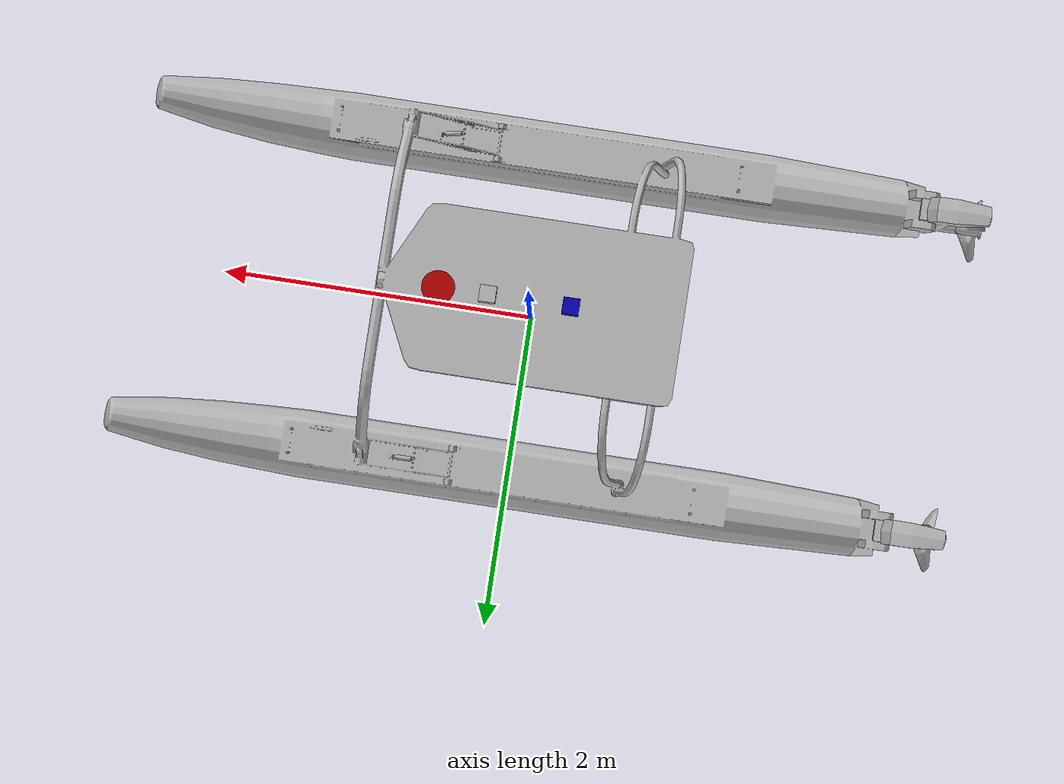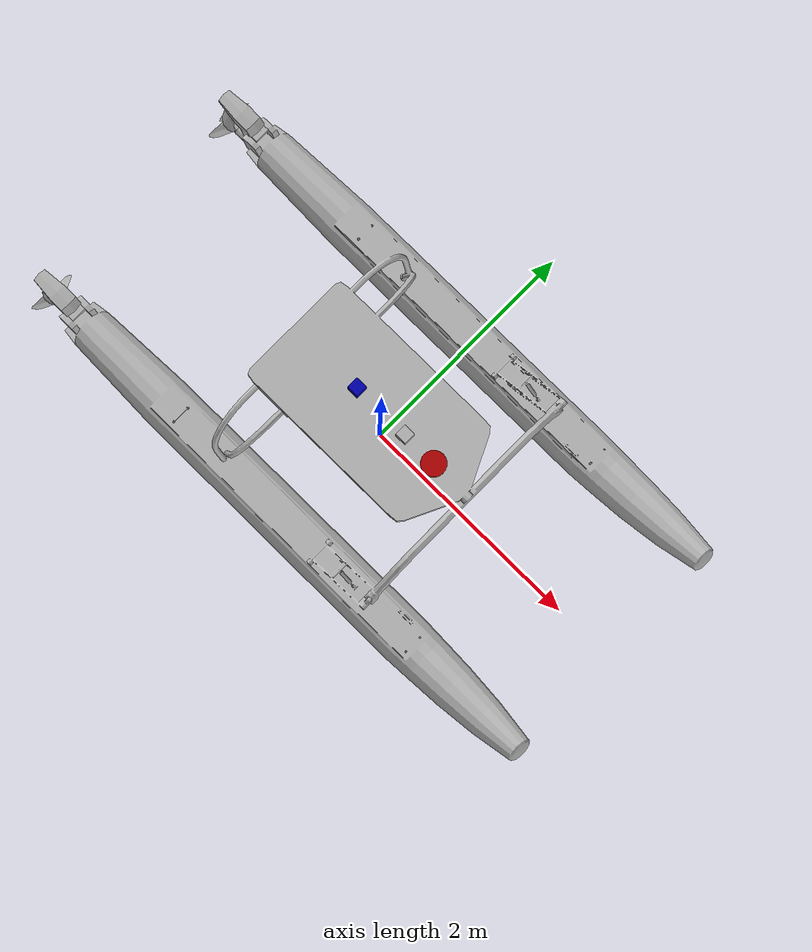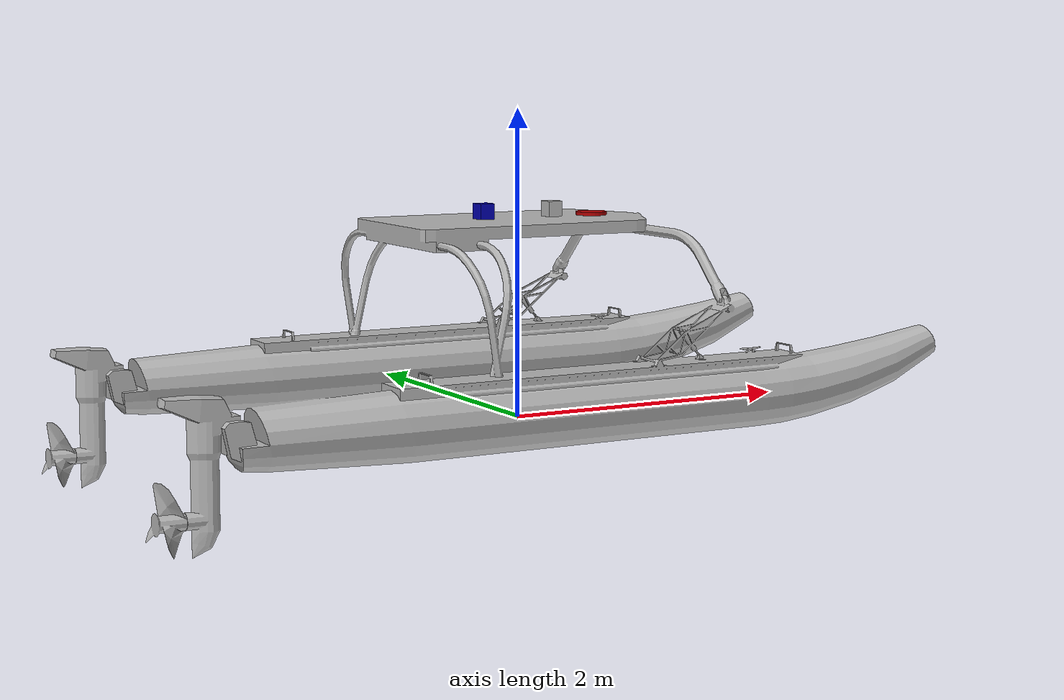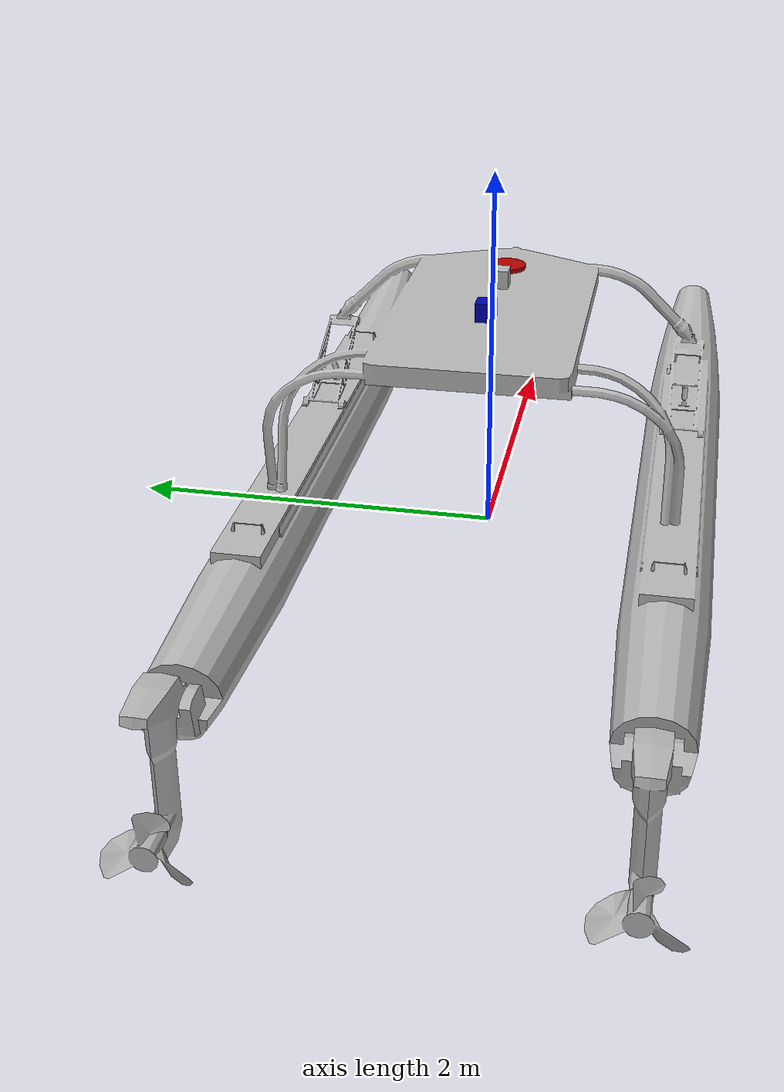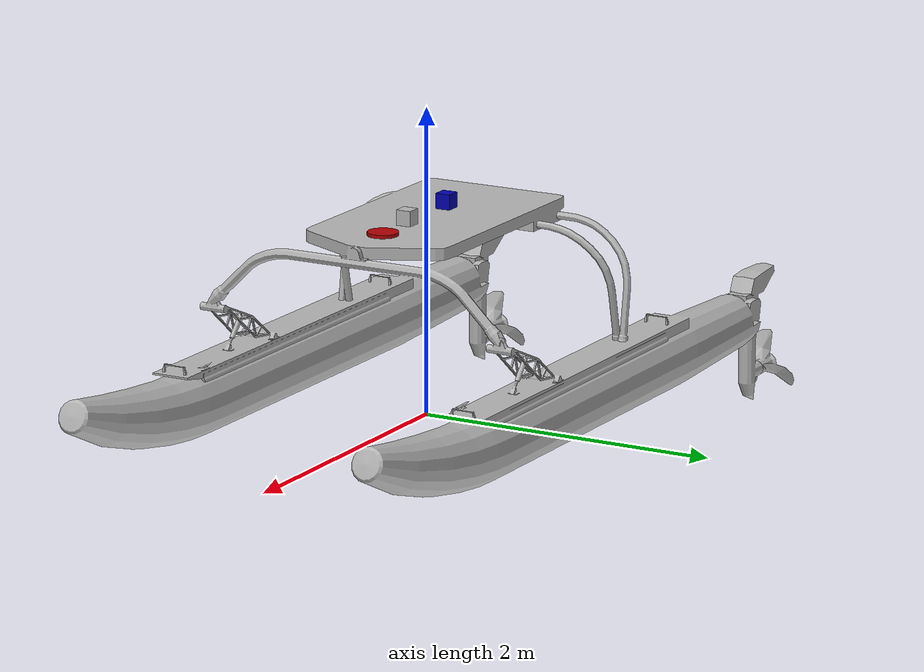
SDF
<?xml version='1.0'?>
<sdf version='1.7'>
  <model name='wam-v'>
    <enable_wind>true</enable_wind>

    <link name="base_link">
      <visual name="visual">
        <geometry>
          <mesh>
            <uri>model://wam-v/meshes/WAM-V-Base.dae</uri>
          </mesh>
        </geometry>
      </visual>
      <collision name="collision">
        <geometry>
          <mesh>
            <uri>model://wam-v/meshes/wam-v-base_collision_406.stl</uri>
          </mesh>
        </geometry>
      </collision>
      <inertial>
        <pose>0 0 0 0 0 0</pose>
        <mass>180</mass>
        <inertia>
          <ixx>120</ixx>
          <ixy>0</ixy>
          <iyy>393</iyy>
          <iyz>0</iyz>
          <izz>446</izz>
        </inertia>
      </inertial>

      <sensor name="gpu_lidar" type="gpu_ray">
        <pose> 0 0 1.5 0 0 0 </pose>
        <topic>/lidar/wam_v</topic>
        <visualize>false</visualize>
        <update_rate>10</update_rate>
        <ray>
          <scan>
            <horizontal>
                <samples>360</samples>
                <min_angle>-3.14</min_angle>
                <max_angle>3.14</max_angle>
            </horizontal>
            <vertical>
                <samples>1</samples>
                <resolution>0.01</resolution>
                <min_angle>0</min_angle>
                <max_angle>0</max_angle>
            </vertical>
          </scan>
          <range>
              <min>0.3</min>
              <max>12</max>
          </range>
          <noise>
            <type>gaussian</type>
            <mean>0.0</mean>
            <stddev>0.01</stddev>
          </noise>
        </ray>
        <always_on>1</always_on>
      </sensor>
    </link>

    <link name="left_engine_link">
      <pose>-2.373776 1.027135 0.318237 0 0 0</pose>
      <visual name="visual">
        <geometry>
          <mesh>
            <uri>model://wam-v/meshes/engine.dae</uri>
          </mesh>
        </geometry>
      </visual>
      <collision name="engine_vertical_axis_collision">
        <pose>-0.16 0 -0.215 0 0 0</pose>
        <geometry>
          <box>
            <size>0.2 0.1 0.83</size>
          </box>
        </geometry>
      </collision>
      <collision name="engine_rear_end_collision">
        <pose>-0.34 0 0.12 0 0 0</pose>
        <geometry>
          <box>
            <size>0.12 0.15 0.12</size>
          </box>
        </geometry>
      </collision>
      <inertial>
        <mass>15</mass>
        <inertia>
          <ixx>0.88924</ixx>
          <ixy>0</ixy>
          <iyy>0.911125</iyy>
          <iyz>0</iyz>
          <izz>0.078125</izz>
        </inertia>
      </inertial>
    </link>
    <joint name="left_engine_joint" type="revolute">
      <parent>base_link</parent>
      <child>left_engine_link</child>
      <axis>
        <xyz>0 0 1</xyz>
        <limit>
          <lower>-1.570796</lower>
          <upper>1.570796</upper>
          <effort>20.0</effort>
        </limit>
        <dynamics>
          <damping>5</damping>
        </dynamics>
      </axis>
    </joint>

    <link name="right_engine_link">
      <pose>-2.373776 -1.027135 0.318237 0 0 0</pose>
      <visual name="visual">
        <geometry>
          <mesh>
            <uri>model://wam-v/meshes/engine.dae</uri>
          </mesh>
        </geometry>
      </visual>
      <collision name="engine_vertical_axis_collision">
        <pose>-0.16 0 -0.215 0 0 0</pose>
        <geometry>
          <box>
            <size>0.2 0.1 0.83</size>
          </box>
        </geometry>
      </collision>
      <collision name="engine_rear_end_collision">
        <pose>-0.34 0 0.12 0 0 0</pose>
        <geometry>
          <box>
            <size>0.12 0.15 0.12</size>
          </box>
        </geometry>
      </collision>
      <inertial>
        <mass>15</mass>
        <inertia>
          <ixx>0.88924</ixx>
          <ixy>0</ixy>
          <iyy>0.911125</iyy>
          <iyz>0</iyz>
          <izz>0.078125</izz>
        </inertia>
      </inertial>
    </link>
    <joint name="right_engine_joint" type="revolute">
      <parent>base_link</parent>
      <child>right_engine_link</child>
      <axis>
        <xyz>0 0 1</xyz>
        <limit>
          <lower>-1.570796</lower>
          <upper>1.570796</upper>
          <effort>20.0</effort>
        </limit>
        <dynamics>
          <damping>5</damping>
        </dynamics>
      </axis>
    </joint>

    <link name="left_propeller_link">
      <pose relative_to="left_propeller_joint">0 0 0 0 0 0</pose>
      <visual name="visual">
        <geometry>
          <mesh>
            <uri>model://wam-v/meshes/propeller.dae</uri>
          </mesh>
        </geometry>
      </visual>
      <collision name="collision">
        <pose>-0.11 0 0 0 1.570796 0</pose>
        <geometry>
          <cylinder>
            <length>0.08</length>
            <radius>0.24</radius>
          </cylinder>
        </geometry>
      </collision>
      <inertial>
        <mass>0.5</mass>
        <inertia>
          <ixx>0.008545</ixx>
          <ixy>0</ixy>
          <iyy>0.008545</iyy>
          <iyz>0</iyz>
          <izz>0.0144</izz>
        </inertia>
      </inertial>
    </link>
    <joint name="left_propeller_joint" type="revolute">
      <pose relative_to="left_engine_link">-0.278156 0 -0.509371 0 0 0</pose>
      <parent>left_engine_link</parent>
      <child>left_propeller_link</child>
      <axis>
        <xyz>1 0 0</xyz>
        <dynamics>
          <damping>0.01</damping>
        </dynamics>
        <limit>
          <lower>-1e+16</lower>
          <upper>1e+16</upper>
        </limit>
      </axis>
    </joint>

    <link name="right_propeller_link">
      <pose relative_to="right_propeller_joint">0 0 0 0 0 0</pose>
      <visual name="visual">
        <geometry>
          <mesh>
            <uri>model://wam-v/meshes/propeller.dae</uri>
          </mesh>
        </geometry>
      </visual>
      <collision name="collision">
        <pose>-0.11 0 0 0 1.570796 0</pose>
        <geometry>
          <cylinder>
            <length>0.08</length>
            <radius>0.24</radius>
          </cylinder>
        </geometry>
      </collision>
      <inertial>
        <mass>0.5</mass>
        <inertia>
          <ixx>0.008545</ixx>
          <ixy>0</ixy>
          <iyy>0.008545</iyy>
          <iyz>0</iyz>
          <izz>0.0144</izz>
        </inertia>
      </inertial>
    </link>
    <joint name="right_propeller_joint" type="revolute">
      <pose relative_to="right_engine_link">-0.278156 0 -0.509371 0 0 0</pose>
      <parent>right_engine_link</parent>
      <child>right_propeller_link</child>
      <axis>
        <xyz>1 0 0</xyz>
        <dynamics>
          <damping>0.01</damping>
        </dynamics>
        <limit>
          <lower>-1e+16</lower>
          <upper>1e+16</upper>
        </limit>
      </axis>
    </joint>

    <link name="lidar">
      <visual name="visual">
        <pose>0.55 0 1.30 0 0 0</pose>
        <geometry>
              <cylinder>
                <radius>0.1</radius>
                <length>0.04</length>
              </cylinder>
        </geometry>
        <material>
          <!-- Red material -->
          <ambient>0.5 0 0 1</ambient>
          <diffuse>0.7 0 0 1</diffuse>
          <specular>0 0 0 0</specular>
          <emissive>0.5 0 0 1</emissive>
        </material>

      </visual>
      <collision name="lidar">
        <geometry>
          <cylinder>
            <radius>0.05</radius>
            <length>0.04</length>
          </cylinder>
        </geometry>
      </collision>
      <inertial>
        <pose>0 0 0 0 0 0</pose>
        <mass>0.1</mass>
        <inertia>
          <ixx>0.00001</ixx>
          <ixy>0</ixy>
          <ixz>0</ixz>
          <iyy>0.00002</iyy>
          <iyz>0</iyz>
          <izz>0.00002</izz>
        </inertia>
      </inertial>

    </link>

    <joint name="lidar_joint" type="fixed">
      <parent>base_link</parent>
      <child>lidar</child>
      <origin xyz="0 0 0" rpy="0 0 0"/>
    </joint>

    <!-- Sensors -->
    <link name="imu_link">
      <inertial>
        <pose>0 0 0 0 0 0</pose>
        <mass>0.15</mass>
        <inertia>
          <ixx>0.00001</ixx>
          <ixy>0</ixy>
          <ixz>0</ixz>
          <iyy>0.00002</iyy>
          <iyz>0</iyz>
          <izz>0.00002</izz>
        </inertia>
      </inertial>
      <sensor name="imu_sensor" type="imu">
        <pose>0 0 0 3.141593 0 0</pose>
        <always_on>1</always_on>
        <update_rate>1000.0</update_rate>
        <topic>/wamv/sensor/imu</topic>
      </sensor>
    </link>
    <joint name="imu_joint" type="revolute">
      <child>imu_link</child>
      <parent>base_link</parent>
      <axis>
        <xyz>0 0 1</xyz>
        <limit>
          <lower>0</lower>
          <upper>0</upper>
          <effort>0</effort>
          <velocity>0</velocity>
        </limit>
        <dynamics>
          <damping>1.0</damping>
        </dynamics>
      </axis>
    </joint>

    <link name="gps_link">
      <inertial>
        <mass>0.1</mass>
        <inertia>
          <ixx>0.000166667</ixx>
          <iyy>0.000166667</iyy>
          <izz>0.000166667</izz>
        </inertia>
      </inertial>
      <collision name="collision">
        <geometry>
          <box>
            <size>0.1 0.1 0.1</size>
          </box>
        </geometry>
      </collision>
      <visual name="visual">
        <pose>0.25 0 1.35 0 0 0</pose>
        <geometry>
          <box>
            <size>0.1 0.1 0.1</size>
          </box>
        </geometry>
      </visual>

      <sensor name="navsat" type="navsat">
        <always_on>1</always_on>
        <update_rate>1000</update_rate>
        <topic>/wamv/sensor/gps</topic>
      </sensor>
    </link>
    <joint name="gps_joint" type="revolute">
      <child>gps_link</child>
      <parent>base_link</parent>
      <axis>
        <xyz>0 0 1</xyz>
        <limit>
          <lower>0</lower>
          <upper>0</upper>
          <effort>0</effort>
          <velocity>0</velocity>
        </limit>
        <dynamics>
          <damping>1.0</damping>
        </dynamics>
      </axis>
    </joint>

    <link name="magnetometer_link">
      <inertial>
        <mass>0.1</mass>
        <inertia>
          <ixx>0.000166667</ixx>
          <iyy>0.000166667</iyy>
          <izz>0.000166667</izz>
        </inertia>
      </inertial>
      <collision name="collision">
        <geometry>
          <box>
            <size>0.1 0.1 0.1</size>
          </box>
        </geometry>
      </collision>
      <visual name="visual">
        <pose>-0.25 0 1.35 0 0 0</pose>
        <geometry>
          <box>
            <size>0.1 0.1 0.1</size>
          </box>
        </geometry>
        <material name="blue">
          <!-- Blue material -->
          <ambient>0 0 0.5 1</ambient>
          <diffuse>0 0 0.7 1</diffuse>
          <specular>0 0 0 0</specular>
          <emissive>0 0 0.5 1</emissive>
        </material>

      </visual>

      <sensor name="magnetometer" type="magnetometer">
        <always_on>1</always_on>
        <update_rate>1000</update_rate>
        <topic>/wamv/sensor/magnetometer</topic>
      </sensor>
    </link>
    <joint name="magnetometer_joint" type="revolute">
      <child>magnetometer_link</child>
      <parent>base_link</parent>
      <axis>
        <xyz>0 0 1</xyz>
        <limit>
          <lower>0</lower>
          <upper>0</upper>
          <effort>0</effort>
          <velocity>0</velocity>
        </limit>
        <dynamics>
          <damping>1.0</damping>
        </dynamics>
      </axis>
    </joint>

    <!-- Joint state and force plugins -->
    <plugin filename="gz-sim-joint-state-publisher-system"
      name="gz::sim::systems::JointStatePublisher">
      <topic>/wamv/state/joint_states</topic>
    </plugin>

    <!-- Joint Position Controller plugin -->
    <plugin
      filename="gz-sim-joint-position-controller-system"
      name="gz::sim::systems::JointPositionController">
      <joint_name>right_engine_joint</joint_name>
      <use_velocity_commands>true</use_velocity_commands>
      <topic>/wamv/rudder/right/cmd</topic>
    </plugin>

    <plugin
      filename="gz-sim-joint-position-controller-system"
      name="gz::sim::systems::JointPositionController">
      <joint_name>left_engine_joint</joint_name>
      <use_velocity_commands>true</use_velocity_commands>
      <topic>/wamv/rudder/left/cmd</topic>
    </plugin>

    <!-- Thruster plugins -->
    <plugin
        filename="gz-sim-thruster-system"
        name="gz::sim::systems::Thruster">
      <namespace>wamv</namespace>
      <joint_name>left_propeller_joint</joint_name>
      <use_angvel_cmd>0</use_angvel_cmd>
      <fluid_density>1000</fluid_density>
      <propeller_diameter>0.48</propeller_diameter>
      <thrust_coefficient>0.01</thrust_coefficient>
      <velocity_control>1</velocity_control>
      <max_thrust_cmd>2000.0</max_thrust_cmd>
      <min_thrust_cmd>-2000.0</min_thrust_cmd>
      <cmd_topic>/wamv/thrust/left_propeller/cmd</cmd_topic>
    </plugin>
    <plugin
        filename="gz-sim-thruster-system"
        name="gz::sim::systems::Thruster">
      <namespace>wamv</namespace>
      <joint_name>right_propeller_joint</joint_name>
      <use_angvel_cmd>0</use_angvel_cmd>
      <fluid_density>1000</fluid_density>
      <propeller_diameter>0.48</propeller_diameter>
      <thrust_coefficient>0.01</thrust_coefficient>
      <velocity_control>1</velocity_control>
      <max_thrust_cmd>2000.0</max_thrust_cmd>
      <min_thrust_cmd>-2000.0</min_thrust_cmd>
      <cmd_topic>/wamv/thrust/right_propeller/cmd</cmd_topic>
    </plugin>

    <!-- Hydrodynamics plugin -->
    <plugin
        filename="gz-waves1-hydrodynamics-system"
        name="gz::sim::systems::Hydrodynamics">

        <enable>wam-v::base_link</enable>

        <hydrodynamics>
          <damping_on>1</damping_on>
          <viscous_drag_on>1</viscous_drag_on>
          <pressure_drag_on>1</pressure_drag_on>

          <!-- Linear and Angular Damping -->
          <cDampL1>1.0E-6</cDampL1>
          <cDampL2>1.0E-6</cDampL2>
          <cDampR1>1.0E-6</cDampR1>
          <cDampR2>1.0E-6</cDampR2>

          <!-- 'Pressure' Drag -->
          <cPDrag1>1.0E+2</cPDrag1>
          <cPDrag2>1.0E+2</cPDrag2>
          <fPDrag>0.4</fPDrag>
          <cSDrag1>1.0E+2</cSDrag1>
          <cSDrag2>1.0E+2</cSDrag2>
          <fSDrag>0.4</fSDrag>
          <vRDrag>1.0</vRDrag>
        </hydrodynamics>
    </plugin>

    <!-- ArduPilot plugin -->
    <plugin name="ArduPilotPlugin" filename="ArduPilotPlugin">
      <fdm_addr>127.0.0.1</fdm_addr>
      <fdm_port_in>9002</fdm_port_in>
      <connectionTimeoutMaxCount>5</connectionTimeoutMaxCount>
      <lock_step>1</lock_step>
      <modelXYZToAirplaneXForwardZDown>0 0 0 3.141593 0 0</modelXYZToAirplaneXForwardZDown>
      <gazeboXYZToNED>0 0 0 3.141593 0 1.57079632</gazeboXYZToNED>
      <imuName>imu_sensor</imuName>

      <!--
        SERVO1_FUNCTION 26 (GroundSteering)
      -->
      <control channel="0">
        <jointName>left_engine_joint</jointName>
        <useForce>1</useForce>
        <multiplier>3.1415926</multiplier>
        <offset>-0.5</offset>
        <servo_min>1000</servo_min>
        <servo_max>2000</servo_max>
        <type>POSITION</type>
        <p_gain>500.0</p_gain>
        <i_gain>0</i_gain>
        <d_gain>10</d_gain>
        <i_max>-1</i_max>
        <i_min>0</i_min>
        <cmd_max>5000.0</cmd_max>
        <cmd_min>-5000.0</cmd_min>
      </control>
      <control channel="0">
        <jointName>right_engine_joint</jointName>
        <useForce>1</useForce>
        <multiplier>3.1415926</multiplier>
        <offset>-0.5</offset>
        <servo_min>1000</servo_min>
        <servo_max>2000</servo_max>
        <type>POSITION</type>
        <p_gain>500.0</p_gain>
        <i_gain>0</i_gain>
        <d_gain>10</d_gain>
        <i_max>-1</i_max>
        <i_min>0</i_min>
        <cmd_max>5000.0</cmd_max>
        <cmd_min>-5000.0</cmd_min>
      </control>

        <!--
          SERVO3_FUNCTION 70 (Throttle)

          max thrust: +/- 1500 N (larger than VRX settings of +250 N / -100 N)

        -->
      <control channel="2">
        <jointName>left_propeller_joint</jointName>
        <useForce>1</useForce>
        <multiplier>3000</multiplier>
        <offset>-0.5</offset>
        <servo_min>1000</servo_min>
        <servo_max>2000</servo_max>
        <type>COMMAND</type>
        <cmd_topic>/wamv/thrust/left_propeller/cmd</cmd_topic>
      </control>
      <control channel="2">
        <jointName>right_propeller_joint</jointName>
        <useForce>1</useForce>
        <multiplier>3000</multiplier>
        <offset>-0.5</offset>
        <servo_min>1000</servo_min>
        <servo_max>2000</servo_max>
        <type>COMMAND</type>
        <cmd_topic>/wamv/thrust/right_propeller/cmd</cmd_topic>
      </control>
    </plugin>

  </model>
</sdf>
